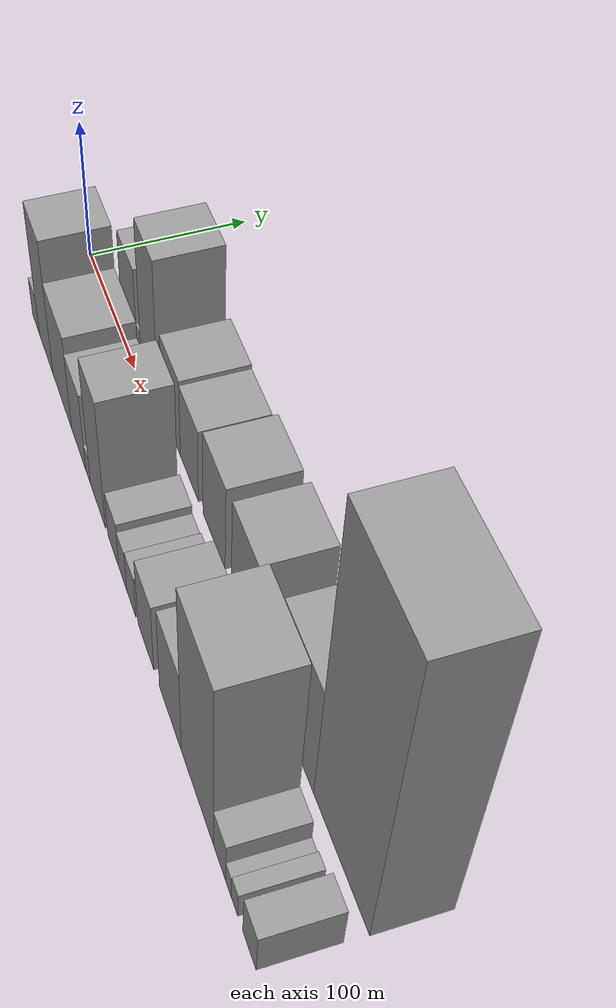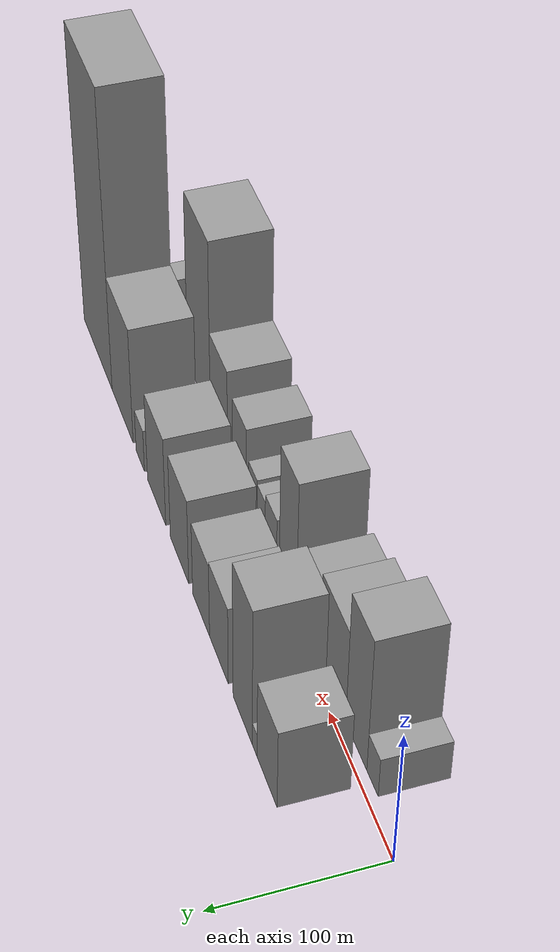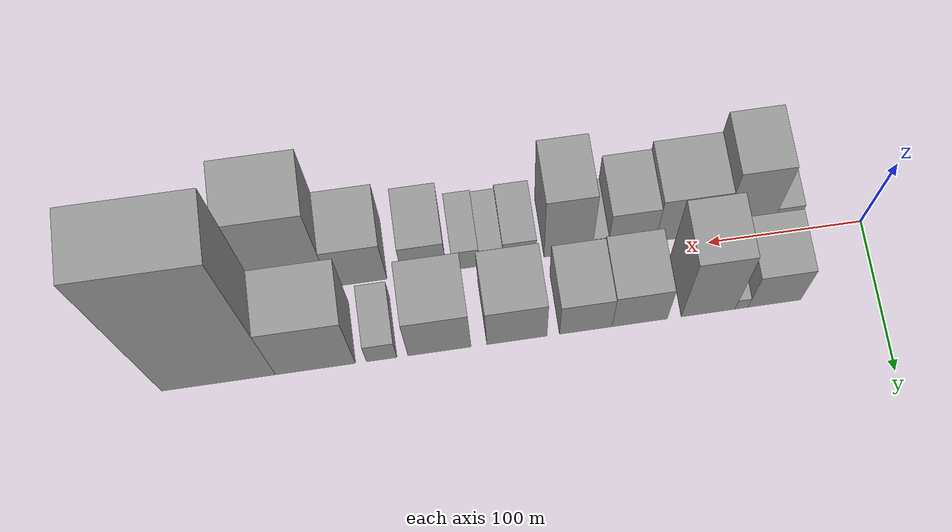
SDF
<sdf version="1.6">
 <world name="default">
  <scene>
   <sky><clouds><speed>12</speed></clouds></sky>
   <ambient>0.4 0.4 0.4 1</ambient>
   <background>0.7 0.7 0.7 1</background>
   <shadows>1</shadows>
  </scene>
  <gravity>0 0 -9.8066</gravity>
  <magnetic_field>6e-06 2.3e-05 -4.2e-05</magnetic_field>
  <physics default="0" name="default_physics" type="ode">
   <ode>
    <solver>
     <type>quick</type>
     <iters>10</iters>
     <sor>1.0</sor>
     <use_dynamic_moi_rescaling>0</use_dynamic_moi_rescaling>
    </solver>
    <constraints>
     <cfm>0</cfm>
     <erp>0.2</erp>
     <contact_max_correcting_vel>100</contact_max_correcting_vel>
     <contact_surface_layer>0.001</contact_surface_layer>
    </constraints>
   </ode>
   <max_step_size>0.004</max_step_size>
   <real_time_factor>1</real_time_factor>
   <real_time_update_rate>250</real_time_update_rate>
  </physics>
  <light name="sun" type="directional">
   <pose>0 0 10 0 0 0</pose>
   <diffuse>0.8 0.8 0.8 1</diffuse>
   <specular>0.2 0.2 0.2 1</specular>
   <attenuation>
    <range>1000</range>
    <constant>0.9</constant>
    <linear>0.01</linear>
    <quadratic>0.001</quadratic>
   </attenuation>
   <direction>-0.5 0.1 -0.9</direction>
  </light>
  <model name="building_1">
   <static>1</static>
   <pose>66.0105 26.0000 0 0.000000 0.000000 1.570796</pose>
   <link name="link">
    <pose>0 0 30.00 0 0 0</pose>
    <collision name="collision"><geometry><box><size>40.0000 34.0210 60.0000</size></box></geometry></collision>
    <visual name="visual">
     <cast_shadows>0</cast_shadows>
     <geometry><box><size>40.0000 34.0210 60.0000</size></box></geometry>
     <material>
      <script>
       <uri>model://grey_wall/materials/scripts</uri>
       <uri>model://grey_wall/materials/textures</uri>
       <name>vrc/grey_wall</name>
      </script>
     </material>
    </visual>
   </link>
  </model>
  <model name="building_2">
   <static>1</static>
   <pose>87.2010 26.0000 0 0.000000 0.000000 1.570796</pose>
   <link name="link">
    <pose>0 0 9.00 0 0 0</pose>
    <collision name="collision"><geometry><box><size>40.0000 8.3601 18.0000</size></box></geometry></collision>
    <visual name="visual">
     <cast_shadows>0</cast_shadows>
     <geometry><box><size>40.0000 8.3601 18.0000</size></box></geometry>
     <material>
      <script>
       <uri>model://grey_wall/materials/scripts</uri>
       <uri>model://grey_wall/materials/textures</uri>
       <name>vrc/grey_wall</name>
      </script>
     </material>
    </visual>
   </link>
  </model>
  <model name="building_3">
   <static>1</static>
   <pose>108.7504 26.0000 0 0.000000 0.000000 1.570796</pose>
   <link name="link">
    <pose>0 0 52.50 0 0 0</pose>
    <collision name="collision"><geometry><box><size>40.0000 34.7387 105.0000</size></box></geometry></collision>
    <visual name="visual">
     <cast_shadows>0</cast_shadows>
     <geometry><box><size>40.0000 34.7387 105.0000</size></box></geometry>
     <material>
      <script>
       <uri>model://grey_wall/materials/scripts</uri>
       <uri>model://grey_wall/materials/textures</uri>
       <name>vrc/grey_wall</name>
      </script>
     </material>
    </visual>
   </link>
  </model>
  <model name="building_4">
   <static>1</static>
   <pose>152.8814 26.0000 0 0.000000 0.000000 1.570796</pose>
   <link name="link">
    <pose>0 0 30.00 0 0 0</pose>
    <collision name="collision"><geometry><box><size>40.0000 35.5234 60.0000</size></box></geometry></collision>
    <visual name="visual">
     <cast_shadows>0</cast_shadows>
     <geometry><box><size>40.0000 35.5234 60.0000</size></box></geometry>
     <material>
      <script>
       <uri>model://grey_wall/materials/scripts</uri>
       <uri>model://grey_wall/materials/textures</uri>
       <name>vrc/grey_wall</name>
      </script>
     </material>
    </visual>
   </link>
  </model>
  <model name="building_5">
   <static>1</static>
   <pose>187.3745 26.0000 0 0.000000 0.000000 1.570796</pose>
   <link name="link">
    <pose>0 0 28.50 0 0 0</pose>
    <collision name="collision"><geometry><box><size>40.0000 33.4628 57.0000</size></box></geometry></collision>
    <visual name="visual">
     <cast_shadows>0</cast_shadows>
     <geometry><box><size>40.0000 33.4628 57.0000</size></box></geometry>
     <material>
      <script>
       <uri>model://grey_wall/materials/scripts</uri>
       <uri>model://grey_wall/materials/textures</uri>
       <name>vrc/grey_wall</name>
      </script>
     </material>
    </visual>
   </link>
  </model>
  <model name="building_6">
   <static>1</static>
   <pose>231.2303 26.0000 0 0.000000 0.000000 1.570796</pose>
   <link name="link">
    <pose>0 0 33.00 0 0 0</pose>
    <collision name="collision"><geometry><box><size>40.0000 38.2487 66.0000</size></box></geometry></collision>
    <visual name="visual">
     <cast_shadows>0</cast_shadows>
     <geometry><box><size>40.0000 38.2487 66.0000</size></box></geometry>
     <material>
      <script>
       <uri>model://grey_wall/materials/scripts</uri>
       <uri>model://grey_wall/materials/textures</uri>
       <name>vrc/grey_wall</name>
      </script>
     </material>
    </visual>
   </link>
  </model>
  <model name="building_7">
   <static>1</static>
   <pose>280.3445 26.0000 0 0.000000 0.000000 1.570796</pose>
   <link name="link">
    <pose>0 0 34.50 0 0 0</pose>
    <collision name="collision"><geometry><box><size>40.0000 39.9798 69.0000</size></box></geometry></collision>
    <visual name="visual">
     <cast_shadows>0</cast_shadows>
     <geometry><box><size>40.0000 39.9798 69.0000</size></box></geometry>
     <material>
      <script>
       <uri>model://grey_wall/materials/scripts</uri>
       <uri>model://grey_wall/materials/textures</uri>
       <name>vrc/grey_wall</name>
      </script>
     </material>
    </visual>
   </link>
  </model>
  <model name="building_8">
   <static>1</static>
   <pose>316.9038 26.0000 0 0.000000 0.000000 1.570796</pose>
   <link name="link">
    <pose>0 0 16.50 0 0 0</pose>
    <collision name="collision"><geometry><box><size>40.0000 19.1388 33.0000</size></box></geometry></collision>
    <visual name="visual">
     <cast_shadows>0</cast_shadows>
     <geometry><box><size>40.0000 19.1388 33.0000</size></box></geometry>
     <material>
      <script>
       <uri>model://grey_wall/materials/scripts</uri>
       <uri>model://grey_wall/materials/textures</uri>
       <name>vrc/grey_wall</name>
      </script>
     </material>
    </visual>
   </link>
  </model>
  <model name="building_9">
   <static>1</static>
   <pose>358.6268 26.0000 0 0.000000 0.000000 1.570796</pose>
   <link name="link">
    <pose>0 0 45.00 0 0 0</pose>
    <collision name="collision"><geometry><box><size>40.0000 50.3071 90.0000</size></box></geometry></collision>
    <visual name="visual">
     <cast_shadows>0</cast_shadows>
     <geometry><box><size>40.0000 50.3071 90.0000</size></box></geometry>
     <material>
      <script>
       <uri>model://grey_wall/materials/scripts</uri>
       <uri>model://grey_wall/materials/textures</uri>
       <name>vrc/grey_wall</name>
      </script>
     </material>
    </visual>
   </link>
  </model>
  <model name="building_10">
   <static>1</static>
   <pose>419.4303 26.0000 0 0.000000 0.000000 1.570796</pose>
   <link name="link">
    <pose>0 0 112.50 0 0 0</pose>
    <collision name="collision"><geometry><box><size>40.0000 71.2999 225.0000</size></box></geometry></collision>
    <visual name="visual">
     <cast_shadows>0</cast_shadows>
     <geometry><box><size>40.0000 71.2999 225.0000</size></box></geometry>
     <material>
      <script>
       <uri>model://grey_wall/materials/scripts</uri>
       <uri>model://grey_wall/materials/textures</uri>
       <name>vrc/grey_wall</name>
      </script>
     </material>
    </visual>
   </link>
  </model>
  <model name="building_11">
   <static>1</static>
   <pose>48.7348 -26.0000 0 0.000000 0.000000 1.570796</pose>
   <link name="link">
    <pose>0 0 15.00 0 0 0</pose>
    <collision name="collision"><geometry><box><size>40.0000 17.4696 30.0000</size></box></geometry></collision>
    <visual name="visual">
     <cast_shadows>0</cast_shadows>
     <geometry><box><size>40.0000 17.4696 30.0000</size></box></geometry>
     <material>
      <script>
       <uri>model://grey_wall/materials/scripts</uri>
       <uri>model://grey_wall/materials/textures</uri>
       <name>vrc/grey_wall</name>
      </script>
     </material>
    </visual>
   </link>
  </model>
  <model name="building_12">
   <static>1</static>
   <pose>74.1374 -26.0000 0 0.000000 0.000000 1.570796</pose>
   <link name="link">
    <pose>0 0 51.00 0 0 0</pose>
    <collision name="collision"><geometry><box><size>40.0000 33.3357 102.0000</size></box></geometry></collision>
    <visual name="visual">
     <cast_shadows>0</cast_shadows>
     <geometry><box><size>40.0000 33.3357 102.0000</size></box></geometry>
     <material>
      <script>
       <uri>model://grey_wall/materials/scripts</uri>
       <uri>model://grey_wall/materials/textures</uri>
       <name>vrc/grey_wall</name>
      </script>
     </material>
    </visual>
   </link>
  </model>
  <model name="building_13">
   <static>1</static>
   <pose>112.3172 -26.0000 0 0.000000 0.000000 1.570796</pose>
   <link name="link">
    <pose>0 0 36.00 0 0 0</pose>
    <collision name="collision"><geometry><box><size>40.0000 43.0237 72.0000</size></box></geometry></collision>
    <visual name="visual">
     <cast_shadows>0</cast_shadows>
     <geometry><box><size>40.0000 43.0237 72.0000</size></box></geometry>
     <material>
      <script>
       <uri>model://grey_wall/materials/scripts</uri>
       <uri>model://grey_wall/materials/textures</uri>
       <name>vrc/grey_wall</name>
      </script>
     </material>
    </visual>
   </link>
  </model>
  <model name="building_14">
   <static>1</static>
   <pose>149.2730 -26.0000 0 0.000000 0.000000 1.570796</pose>
   <link name="link">
    <pose>0 0 30.00 0 0 0</pose>
    <collision name="collision"><geometry><box><size>40.0000 30.8880 60.0000</size></box></geometry></collision>
    <visual name="visual">
     <cast_shadows>0</cast_shadows>
     <geometry><box><size>40.0000 30.8880 60.0000</size></box></geometry>
     <material>
      <script>
       <uri>model://grey_wall/materials/scripts</uri>
       <uri>model://grey_wall/materials/textures</uri>
       <name>vrc/grey_wall</name>
      </script>
     </material>
    </visual>
   </link>
  </model>
  <model name="building_15">
   <static>1</static>
   <pose>169.7862 -26.0000 0 0.000000 0.000000 1.570796</pose>
   <link name="link">
    <pose>0 0 10.50 0 0 0</pose>
    <collision name="collision"><geometry><box><size>40.0000 10.1384 21.0000</size></box></geometry></collision>
    <visual name="visual">
     <cast_shadows>0</cast_shadows>
     <geometry><box><size>40.0000 10.1384 21.0000</size></box></geometry>
     <material>
      <script>
       <uri>model://grey_wall/materials/scripts</uri>
       <uri>model://grey_wall/materials/textures</uri>
       <name>vrc/grey_wall</name>
      </script>
     </material>
    </visual>
   </link>
  </model>
  <model name="building_16">
   <static>1</static>
   <pose>190.4837 -26.0000 0 0.000000 0.000000 1.570796</pose>
   <link name="link">
    <pose>0 0 49.50 0 0 0</pose>
    <collision name="collision"><geometry><box><size>40.0000 31.2566 99.0000</size></box></geometry></collision>
    <visual name="visual">
     <cast_shadows>0</cast_shadows>
     <geometry><box><size>40.0000 31.2566 99.0000</size></box></geometry>
     <material>
      <script>
       <uri>model://grey_wall/materials/scripts</uri>
       <uri>model://grey_wall/materials/textures</uri>
       <name>vrc/grey_wall</name>
      </script>
     </material>
    </visual>
   </link>
  </model>
  <model name="building_17">
   <static>1</static>
   <pose>221.8634 -26.0000 0 0.000000 0.000000 1.570796</pose>
   <link name="link">
    <pose>0 0 18.00 0 0 0</pose>
    <collision name="collision"><geometry><box><size>40.0000 21.5027 36.0000</size></box></geometry></collision>
    <visual name="visual">
     <cast_shadows>0</cast_shadows>
     <geometry><box><size>40.0000 21.5027 36.0000</size></box></geometry>
     <material>
      <script>
       <uri>model://grey_wall/materials/scripts</uri>
       <uri>model://grey_wall/materials/textures</uri>
       <name>vrc/grey_wall</name>
      </script>
     </material>
    </visual>
   </link>
  </model>
  <model name="building_18">
   <static>1</static>
   <pose>240.2632 -26.0000 0 0.000000 0.000000 1.570796</pose>
   <link name="link">
    <pose>0 0 15.00 0 0 0</pose>
    <collision name="collision"><geometry><box><size>40.0000 15.2971 30.0000</size></box></geometry></collision>
    <visual name="visual">
     <cast_shadows>0</cast_shadows>
     <geometry><box><size>40.0000 15.2971 30.0000</size></box></geometry>
     <material>
      <script>
       <uri>model://grey_wall/materials/scripts</uri>
       <uri>model://grey_wall/materials/textures</uri>
       <name>vrc/grey_wall</name>
      </script>
     </material>
    </visual>
   </link>
  </model>
  <model name="building_19">
   <static>1</static>
   <pose>256.4667 -26.0000 0 0.000000 0.000000 1.570796</pose>
   <link name="link">
    <pose>0 0 16.50 0 0 0</pose>
    <collision name="collision"><geometry><box><size>40.0000 17.1098 33.0000</size></box></geometry></collision>
    <visual name="visual">
     <cast_shadows>0</cast_shadows>
     <geometry><box><size>40.0000 17.1098 33.0000</size></box></geometry>
     <material>
      <script>
       <uri>model://grey_wall/materials/scripts</uri>
       <uri>model://grey_wall/materials/textures</uri>
       <name>vrc/grey_wall</name>
      </script>
     </material>
    </visual>
   </link>
  </model>
  <model name="building_20">
   <static>1</static>
   <pose>283.2064 -26.0000 0 0.000000 0.000000 1.570796</pose>
   <link name="link">
    <pose>0 0 27.00 0 0 0</pose>
    <collision name="collision"><geometry><box><size>40.0000 28.3697 54.0000</size></box></geometry></collision>
    <visual name="visual">
     <cast_shadows>0</cast_shadows>
     <geometry><box><size>40.0000 28.3697 54.0000</size></box></geometry>
     <material>
      <script>
       <uri>model://grey_wall/materials/scripts</uri>
       <uri>model://grey_wall/materials/textures</uri>
       <name>vrc/grey_wall</name>
      </script>
     </material>
    </visual>
   </link>
  </model>
  <model name="building_21">
   <static>1</static>
   <pose>325.6165 -26.0000 0 0.000000 0.000000 1.570796</pose>
   <link name="link">
    <pose>0 0 33.00 0 0 0</pose>
    <collision name="collision"><geometry><box><size>40.0000 36.4504 66.0000</size></box></geometry></collision>
    <visual name="visual">
     <cast_shadows>0</cast_shadows>
     <geometry><box><size>40.0000 36.4504 66.0000</size></box></geometry>
     <material>
      <script>
       <uri>model://grey_wall/materials/scripts</uri>
       <uri>model://grey_wall/materials/textures</uri>
       <name>vrc/grey_wall</name>
      </script>
     </material>
    </visual>
   </link>
  </model>
  <model name="building_22">
   <static>1</static>
   <pose>368.9607 -26.0000 0 0.000000 0.000000 1.570796</pose>
   <link name="link">
    <pose>0 0 67.50 0 0 0</pose>
    <collision name="collision"><geometry><box><size>40.0000 50.2380 135.0000</size></box></geometry></collision>
    <visual name="visual">
     <cast_shadows>0</cast_shadows>
     <geometry><box><size>40.0000 50.2380 135.0000</size></box></geometry>
     <material>
      <script>
       <uri>model://grey_wall/materials/scripts</uri>
       <uri>model://grey_wall/materials/textures</uri>
       <name>vrc/grey_wall</name>
      </script>
     </material>
    </visual>
   </link>
  </model>
  <model name="building_23">
   <static>1</static>
   <pose>402.9737 -26.0000 0 0.000000 0.000000 1.570796</pose>
   <link name="link">
    <pose>0 0 16.50 0 0 0</pose>
    <collision name="collision"><geometry><box><size>40.0000 17.7880 33.0000</size></box></geometry></collision>
    <visual name="visual">
     <cast_shadows>0</cast_shadows>
     <geometry><box><size>40.0000 17.7880 33.0000</size></box></geometry>
     <material>
      <script>
       <uri>model://grey_wall/materials/scripts</uri>
       <uri>model://grey_wall/materials/textures</uri>
       <name>vrc/grey_wall</name>
      </script>
     </material>
    </visual>
   </link>
  </model>
  <model name="building_24">
   <static>1</static>
   <pose>416.0546 -26.0000 0 0.000000 0.000000 1.570796</pose>
   <link name="link">
    <pose>0 0 9.00 0 0 0</pose>
    <collision name="collision"><geometry><box><size>40.0000 8.3738 18.0000</size></box></geometry></collision>
    <visual name="visual">
     <cast_shadows>0</cast_shadows>
     <geometry><box><size>40.0000 8.3738 18.0000</size></box></geometry>
     <material>
      <script>
       <uri>model://grey_wall/materials/scripts</uri>
       <uri>model://grey_wall/materials/textures</uri>
       <name>vrc/grey_wall</name>
      </script>
     </material>
    </visual>
   </link>
  </model>
  <model name="building_25">
   <static>1</static>
   <pose>424.7357 -26.0000 0 0.000000 0.000000 1.570796</pose>
   <link name="link">
    <pose>0 0 10.50 0 0 0</pose>
    <collision name="collision"><geometry><box><size>40.0000 8.9884 21.0000</size></box></geometry></collision>
    <visual name="visual">
     <cast_shadows>0</cast_shadows>
     <geometry><box><size>40.0000 8.9884 21.0000</size></box></geometry>
     <material>
      <script>
       <uri>model://grey_wall/materials/scripts</uri>
       <uri>model://grey_wall/materials/textures</uri>
       <name>vrc/grey_wall</name>
      </script>
     </material>
    </visual>
   </link>
  </model>
  <model name="building_26">
   <static>1</static>
   <pose>445.3314 -26.0000 0 0.000000 0.000000 1.570796</pose>
   <link name="link">
    <pose>0 0 16.50 0 0 0</pose>
    <collision name="collision"><geometry><box><size>40.0000 18.2031 33.0000</size></box></geometry></collision>
    <visual name="visual">
     <cast_shadows>0</cast_shadows>
     <geometry><box><size>40.0000 18.2031 33.0000</size></box></geometry>
     <material>
      <script>
       <uri>model://grey_wall/materials/scripts</uri>
       <uri>model://grey_wall/materials/textures</uri>
       <name>vrc/grey_wall</name>
      </script>
     </material>
    </visual>
   </link>
  </model>
 </world>
</sdf>
